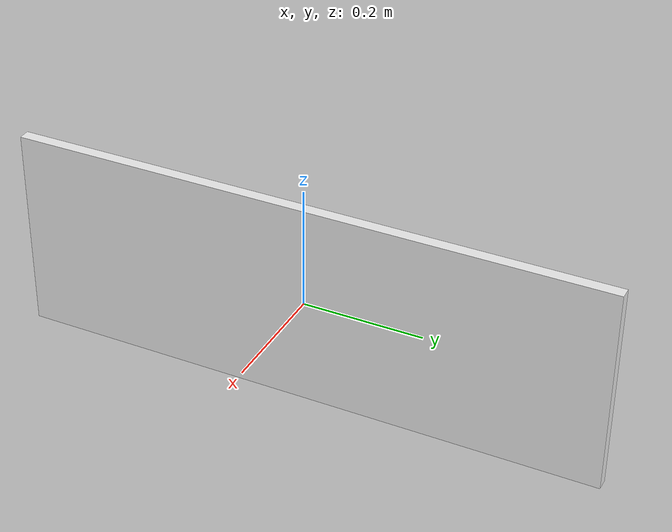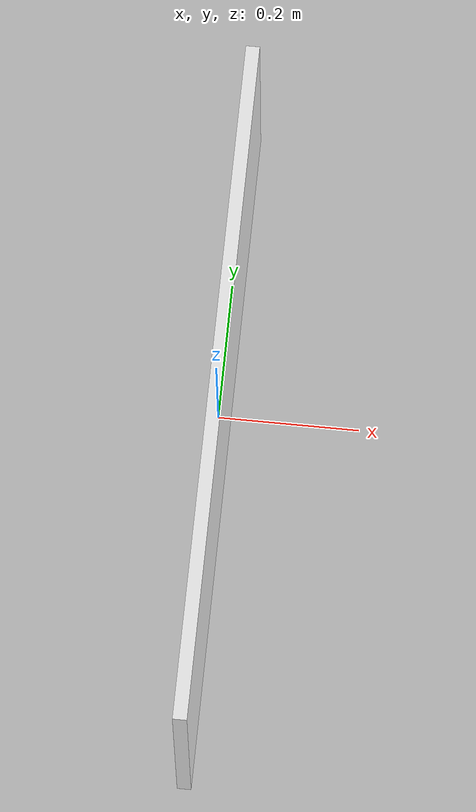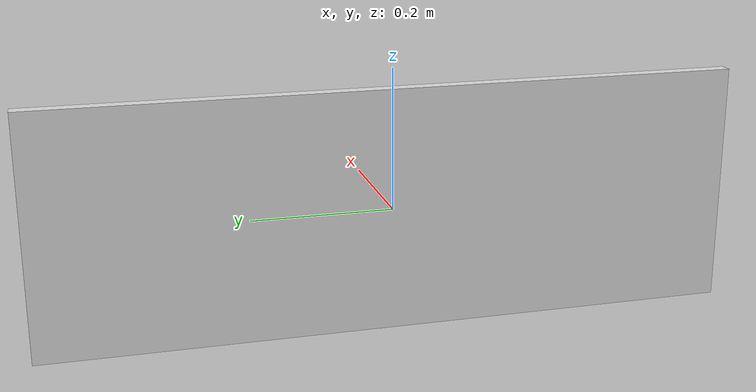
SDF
<?xml version='1.0'?>
<sdf version='1.6'>
  <model name='white_wall'>
    <link name='link_0'>
      <pose frame=''>0 -0 0 0 -0 0</pose>
      <inertial>
        <mass>0.0175997</mass>
        <inertia>
          <ixx>0.00164239</ixx>
          <ixy>0</ixy>
          <ixz>0</ixz>
          <iyy>0.000179535</iyy>
          <iyz>0</iyz>
          <izz>0.00147044</izz>
        </inertia>
        <pose frame=''>0 0 0 0 -0 0</pose>
      </inertial>
      <gravity>1</gravity>
      <self_collide>0</self_collide>
      <kinematic>0</kinematic>
      <visual name='visual'>
        <pose frame=''>0 0 0 0 -0 0</pose>
        <geometry>
          <box>
            <size>0.02 1 0.346159</size>
          </box>
        </geometry>
        <material>
          <lighting>1</lighting>
          <script>
            <uri>file://media/materials/scripts/gazebo.material</uri>
            <name>Gazebo/White</name>
          </script>
          <ambient>1 1 1 1</ambient>
          <diffuse>1 1 1 1</diffuse>
          <specular>0.01 0.01 0.01 1</specular>
          <emissive>0 0 0 1</emissive>
          <shader type='vertex'>
            <normal_map>__default__</normal_map>
          </shader>
        </material>
        <transparency>0</transparency>
        <cast_shadows>1</cast_shadows>
      </visual>
      <collision name='collision'>
        <laser_retro>0</laser_retro>
        <max_contacts>10</max_contacts>
        <pose frame=''>0 0 0 0 -0 0</pose>
        <geometry>
          <box>
            <size>0.050867 1 0.346159</size>
          </box>
        </geometry>
        <surface>
          <friction>
            <ode>
              <mu>1</mu>
              <mu2>1</mu2>
              <fdir1>0 0 0</fdir1>
              <slip1>0</slip1>
              <slip2>0</slip2>
            </ode>
            <torsional>
              <coefficient>1</coefficient>
              <patch_radius>0</patch_radius>
              <surface_radius>0</surface_radius>
              <use_patch_radius>1</use_patch_radius>
              <ode>
                <slip>0</slip>
              </ode>
            </torsional>
          </friction>
          <bounce>
            <restitution_coefficient>0</restitution_coefficient>
            <threshold>1e+06</threshold>
          </bounce>
          <contact>
            <collide_without_contact>0</collide_without_contact>
            <collide_without_contact_bitmask>1</collide_without_contact_bitmask>
            <collide_bitmask>1</collide_bitmask>
            <ode>
              <soft_cfm>0</soft_cfm>
              <soft_erp>0.2</soft_erp>
              <kp>1e+13</kp>
              <kd>1</kd>
              <max_vel>0.01</max_vel>
              <min_depth>0</min_depth>
            </ode>
            <bullet>
              <split_impulse>1</split_impulse>
              <split_impulse_penetration_threshold>-0.01</split_impulse_penetration_threshold>
              <soft_cfm>0</soft_cfm>
              <soft_erp>0.2</soft_erp>
              <kp>1e+13</kp>
              <kd>1</kd>
            </bullet>
          </contact>
        </surface>
      </collision>
    </link>
    <static>1</static>
    <allow_auto_disable>1</allow_auto_disable>
  </model>
</sdf>
